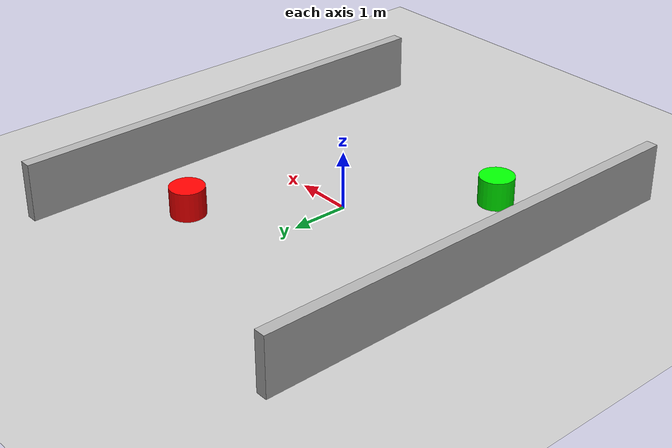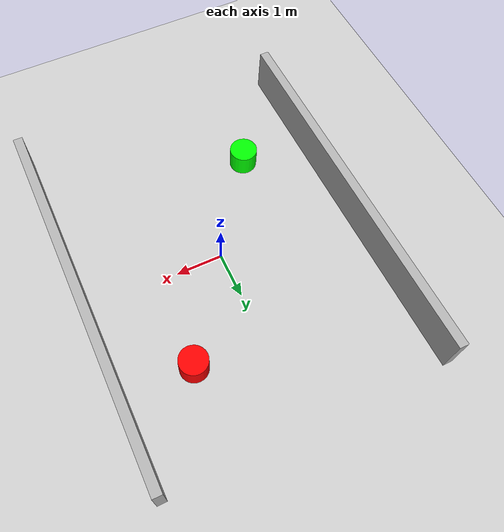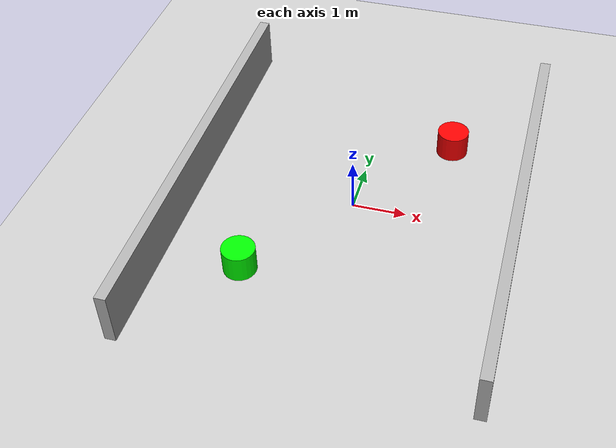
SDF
<?xml version="1.0" ?>
<sdf version="1.6">
  <world name="lidar_2d_test">
    <include>
      <uri>https://fuel.gazebosim.org/1.0/OpenRobotics/models/Sun</uri>
    </include>

    <include>
      <uri>https://fuel.gazebosim.org/1.0/OpenRobotics/models/Ground Plane</uri>
    </include>

    <!-- Simple obstacles for 2D lidar testing -->
    <model name="wall_1">
      <pose>3 0 0.5 0 0 0</pose>
      <link name="link">
        <collision name="collision">
          <geometry>
            <box>
              <size>0.2 8 1</size>
            </box>
          </geometry>
        </collision>
        <visual name="visual">
          <geometry>
            <box>
              <size>0.2 8 1</size>
            </box>
          </geometry>
          <material>
            <ambient>0.7 0.7 0.7 1</ambient>
            <diffuse>0.7 0.7 0.7 1</diffuse>
          </material>
        </visual>
      </link>
    </model>

    <model name="wall_2">
      <pose>-3 0 0.5 0 0 0</pose>
      <link name="link">
        <collision name="collision">
          <geometry>
            <box>
              <size>0.2 8 1</size>
            </box>
          </geometry>
        </collision>
        <visual name="visual">
          <geometry>
            <box>
              <size>0.2 8 1</size>
            </box>
          </geometry>
          <material>
            <ambient>0.7 0.7 0.7 1</ambient>
            <diffuse>0.7 0.7 0.7 1</diffuse>
          </material>
        </visual>
      </link>
    </model>

    <!-- Cylindrical obstacles -->
    <model name="cylinder_1">
      <pose>1.5 2 0.25 0 0 0</pose>
      <link name="link">
        <collision name="collision">
          <geometry>
            <cylinder>
              <radius>0.3</radius>
              <length>0.5</length>
            </cylinder>
          </geometry>
        </collision>
        <visual name="visual">
          <geometry>
            <cylinder>
              <radius>0.3</radius>
              <length>0.5</length>
            </cylinder>
          </geometry>
          <material>
            <ambient>1 0 0 1</ambient>
            <diffuse>1 0 0 1</diffuse>
          </material>
        </visual>
      </link>
    </model>

    <model name="cylinder_2">
      <pose>-1.5 -2 0.25 0 0 0</pose>
      <link name="link">
        <collision name="collision">
          <geometry>
            <cylinder>
              <radius>0.3</radius>
              <length>0.5</length>
            </cylinder>
          </geometry>
        </collision>
        <visual name="visual">
          <geometry>
            <cylinder>
              <radius>0.3</radius>
              <length>0.5</length>
            </cylinder>
          </geometry>
          <material>
            <ambient>0 1 0 1</ambient>
            <diffuse>0 1 0 1</diffuse>
          </material>
        </visual>
      </link>
    </model>
  </world>
</sdf>
